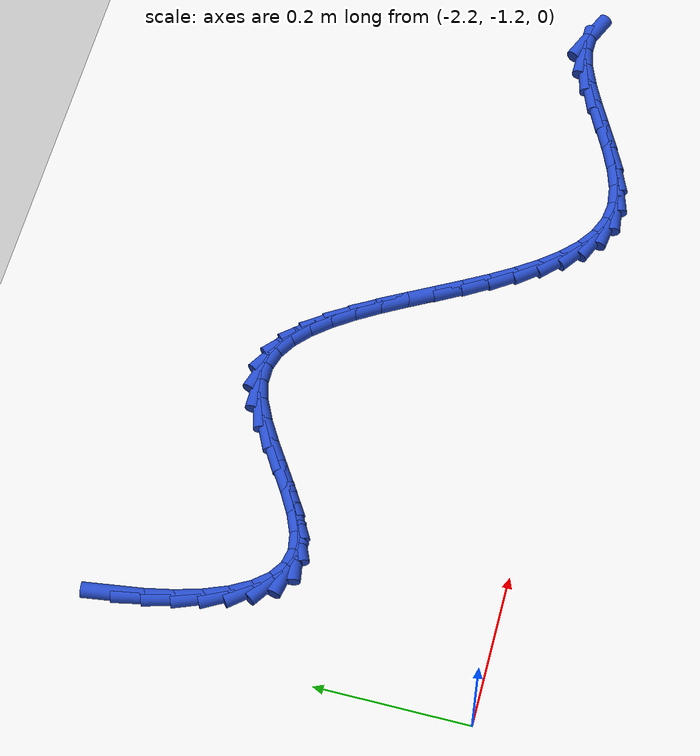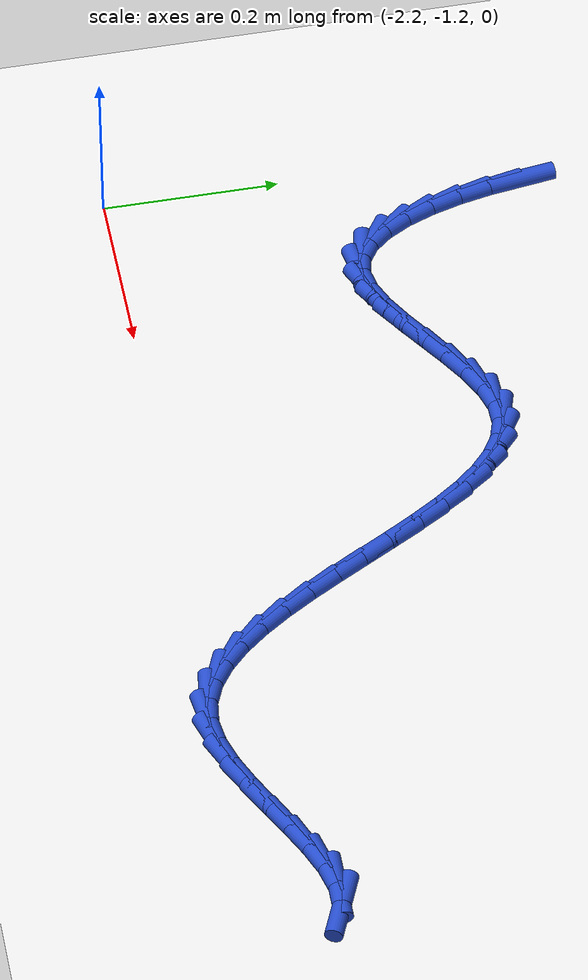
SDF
<sdf version="1.6">
 <world name="default">
  <model name="ground_plane">
   <static>1</static>
   <link name="link">
    <collision name="collision">
     <geometry><plane><normal>0 0 1</normal><size>100 100</size></plane></geometry>
     <surface><friction><ode><mu>100</mu><mu2>50</mu2></ode></friction></surface>
    </collision>
    <visual name="visual">
     <cast_shadows>0</cast_shadows>
     <geometry><plane><normal>0 0 1</normal><size>100 100</size></plane></geometry>
     <material>
      <script><uri>file://media/materials/scripts/gazebo.material</uri><name>Gazebo/WhiteGlow</name></script>
     </material>
    </visual>
   </link>
  </model>
  <model name="line">
   <link name="link_149">
    <pose>-2.1473235348914472 -0.730478417342017 0.01 0 1.57 -1.428241355379654</pose>
    <collision name="collision">
     <geometry><cylinder><radius>0.01</radius><length>0.08</length></cylinder></geometry>
    </collision>
    <visual name="visual">
     <material>
      <script><name>Gazebo/Blue</name><uri>file://media/materials/scripts/gazebo.material</uri></script>
     </material>
     <geometry><cylinder><radius>0.01</radius><length>0.08</length></cylinder></geometry>
    </visual>
   </link>
   <link name="link_150">
    <pose>-2.14197043281287 -0.7677748443466796 0.01 0 1.57 -1.3637867196344429</pose>
    <collision name="collision">
     <geometry><cylinder><radius>0.01</radius><length>0.08</length></cylinder></geometry>
    </collision>
    <visual name="visual">
     <material>
      <script><name>Gazebo/Blue</name><uri>file://media/materials/scripts/gazebo.material</uri></script>
     </material>
     <geometry><cylinder><radius>0.01</radius><length>0.08</length></cylinder></geometry>
    </visual>
   </link>
   <link name="link_151">
    <pose>-2.1342956981437093 -0.8043180361580814 0.01 0 1.57 -1.2878270527842612</pose>
    <collision name="collision">
     <geometry><cylinder><radius>0.01</radius><length>0.08</length></cylinder></geometry>
    </collision>
    <visual name="visual">
     <material>
      <script><name>Gazebo/Blue</name><uri>file://media/materials/scripts/gazebo.material</uri></script>
     </material>
     <geometry><cylinder><radius>0.01</radius><length>0.08</length></cylinder></geometry>
    </visual>
   </link>
   <link name="link_152">
    <pose>-2.124271263408682 -0.8387932914511042 0.01 0 1.57 -1.1912564215748491</pose>
    <collision name="collision">
     <geometry><cylinder><radius>0.01</radius><length>0.08</length></cylinder></geometry>
    </collision>
    <visual name="visual">
     <material>
      <script><name>Gazebo/Blue</name><uri>file://media/materials/scripts/gazebo.material</uri></script>
     </material>
     <geometry><cylinder><radius>0.01</radius><length>0.08</length></cylinder></geometry>
    </visual>
   </link>
   <link name="link_153">
    <pose>-2.1118690611325053 -0.8698859089006309 0.01 0 1.57 -1.0595388161125094</pose>
    <collision name="collision">
     <geometry><cylinder><radius>0.01</radius><length>0.08</length></cylinder></geometry>
    </collision>
    <visual name="visual">
     <material>
      <script><name>Gazebo/Blue</name><uri>file://media/materials/scripts/gazebo.material</uri></script>
     </material>
     <geometry><cylinder><radius>0.01</radius><length>0.08</length></cylinder></geometry>
    </visual>
   </link>
   <link name="link_154">
    <pose>-2.0970610238398946 -0.8962811871815436 0.01 0 1.57 -0.8686942385271983</pose>
    <collision name="collision">
     <geometry><cylinder><radius>0.01</radius><length>0.08</length></cylinder></geometry>
    </collision>
    <visual name="visual">
     <material>
      <script><name>Gazebo/Blue</name><uri>file://media/materials/scripts/gazebo.material</uri></script>
     </material>
     <geometry><cylinder><radius>0.01</radius><length>0.08</length></cylinder></geometry>
    </visual>
   </link>
   <link name="link_155">
    <pose>-2.0798190840555666 -0.9166644249687246 0.01 0 1.57 -0.5852061030363223</pose>
    <collision name="collision">
     <geometry><cylinder><radius>0.01</radius><length>0.08</length></cylinder></geometry>
    </collision>
    <visual name="visual">
     <material>
      <script><name>Gazebo/Blue</name><uri>file://media/materials/scripts/gazebo.material</uri></script>
     </material>
     <geometry><cylinder><radius>0.01</radius><length>0.08</length></cylinder></geometry>
    </visual>
   </link>
   <link name="link_156">
    <pose>-2.0601151743042365 -0.9297209209370564 0.01 0 1.57 -0.19696832118160715</pose>
    <collision name="collision">
     <geometry><cylinder><radius>0.01</radius><length>0.08</length></cylinder></geometry>
    </collision>
    <visual name="visual">
     <material>
      <script><name>Gazebo/Blue</name><uri>file://media/materials/scripts/gazebo.material</uri></script>
     </material>
     <geometry><cylinder><radius>0.01</radius><length>0.08</length></cylinder></geometry>
    </visual>
   </link>
   <link name="link_157">
    <pose>-2.037923364381969 -0.9341494233161004 0.01 0 1.57 0.17498329637496426</pose>
    <collision name="collision">
     <geometry><cylinder><radius>0.01</radius><length>0.08</length></cylinder></geometry>
    </collision>
    <visual name="visual">
     <material>
      <script><name>Gazebo/Blue</name><uri>file://media/materials/scripts/gazebo.material</uri></script>
     </material>
     <geometry><cylinder><radius>0.01</radius><length>0.08</length></cylinder></geometry>
    </visual>
   </link>
   <link name="link_158">
    <pose>-2.0134029734777923 -0.9298144292910283 0.01 0 1.57 0.4011921284588078</pose>
    <collision name="collision">
     <geometry><cylinder><radius>0.01</radius><length>0.08</length></cylinder></geometry>
    </collision>
    <visual name="visual">
     <material>
      <script><name>Gazebo/Blue</name><uri>file://media/materials/scripts/gazebo.material</uri></script>
     </material>
     <geometry><cylinder><radius>0.01</radius><length>0.08</length></cylinder></geometry>
    </visual>
   </link>
   <link name="link_159">
    <pose>-1.9870391641682301 -0.9186309236766069 0.01 0 1.57 0.521497393736799</pose>
    <collision name="collision">
     <geometry><cylinder><radius>0.01</radius><length>0.08</length></cylinder></geometry>
    </collision>
    <visual name="visual">
     <material>
      <script><name>Gazebo/Blue</name><uri>file://media/materials/scripts/gazebo.material</uri></script>
     </material>
     <geometry><cylinder><radius>0.01</radius><length>0.08</length></cylinder></geometry>
    </visual>
   </link>
   <link name="link_160">
    <pose>-1.9593501978736008 -0.9027221777600443 0.01 0 1.57 0.5760891140375564</pose>
    <collision name="collision">
     <geometry><cylinder><radius>0.01</radius><length>0.08</length></cylinder></geometry>
    </collision>
    <visual name="visual">
     <material>
      <script><name>Gazebo/Blue</name><uri>file://media/materials/scripts/gazebo.material</uri></script>
     </material>
     <geometry><cylinder><radius>0.01</radius><length>0.08</length></cylinder></geometry>
    </visual>
   </link>
   <link name="link_161">
    <pose>-1.93085433601422 -0.8842114628285477 0.01 0 1.57 0.5831707996606467</pose>
    <collision name="collision">
     <geometry><cylinder><radius>0.01</radius><length>0.08</length></cylinder></geometry>
    </collision>
    <visual name="visual">
     <material>
      <script><name>Gazebo/Blue</name><uri>file://media/materials/scripts/gazebo.material</uri></script>
     </material>
     <geometry><cylinder><radius>0.01</radius><length>0.08</length></cylinder></geometry>
    </visual>
   </link>
   <link name="link_162">
    <pose>-1.9020698400104066 -0.8652220501693247 0.01 0 1.57 0.545858569422847</pose>
    <collision name="collision">
     <geometry><cylinder><radius>0.01</radius><length>0.08</length></cylinder></geometry>
    </collision>
    <visual name="visual">
     <material>
      <script><name>Gazebo/Blue</name><uri>file://media/materials/scripts/gazebo.material</uri></script>
     </material>
     <geometry><cylinder><radius>0.01</radius><length>0.08</length></cylinder></geometry>
    </visual>
   </link>
   <link name="link_163">
    <pose>-1.8735149712824757 -0.8478772110695826 0.01 0 1.57 0.45421036179904695</pose>
    <collision name="collision">
     <geometry><cylinder><radius>0.01</radius><length>0.08</length></cylinder></geometry>
    </collision>
    <visual name="visual">
     <material>
      <script><name>Gazebo/Blue</name><uri>file://media/materials/scripts/gazebo.material</uri></script>
     </material>
     <geometry><cylinder><radius>0.01</radius><length>0.08</length></cylinder></geometry>
    </visual>
   </link>
   <link name="link_164">
    <pose>-1.8457079912507453 -0.834300216816529 0.01 0 1.57 0.281876377252097</pose>
    <collision name="collision">
     <geometry><cylinder><radius>0.01</radius><length>0.08</length></cylinder></geometry>
    </collision>
    <visual name="visual">
     <material>
      <script><name>Gazebo/Blue</name><uri>file://media/materials/scripts/gazebo.material</uri></script>
     </material>
     <geometry><cylinder><radius>0.01</radius><length>0.08</length></cylinder></geometry>
    </visual>
   </link>
   <link name="link_165">
    <pose>-1.8191671613355307 -0.8266143386973712 0.01 0 1.57 0.005169422000531282</pose>
    <collision name="collision">
     <geometry><cylinder><radius>0.01</radius><length>0.08</length></cylinder></geometry>
    </collision>
    <visual name="visual">
     <material>
      <script><name>Gazebo/Blue</name><uri>file://media/materials/scripts/gazebo.material</uri></script>
     </material>
     <geometry><cylinder><radius>0.01</radius><length>0.08</length></cylinder></geometry>
    </visual>
   </link>
   <link name="link_166">
    <pose>-1.794299379837322 -0.8264857854954821 0.01 0 1.57 -0.2960167781823894</pose>
    <collision name="collision">
     <geometry><cylinder><radius>0.01</radius><length>0.08</length></cylinder></geometry>
    </collision>
    <visual name="visual">
     <material>
      <script><name>Gazebo/Blue</name><uri>file://media/materials/scripts/gazebo.material</uri></script>
     </material>
     <geometry><cylinder><radius>0.01</radius><length>0.08</length></cylinder></geometry>
    </visual>
   </link>
   <link name="link_167">
    <pose>-1.7710250180691312 -0.833583935774134 0.01 0 1.57 -0.5508662085973592</pose>
    <collision name="collision">
     <geometry><cylinder><radius>0.01</radius><length>0.08</length></cylinder></geometry>
    </collision>
    <visual name="visual">
     <material>
      <script><name>Gazebo/Blue</name><uri>file://media/materials/scripts/gazebo.material</uri></script>
     </material>
     <geometry><cylinder><radius>0.01</radius><length>0.08</length></cylinder></geometry>
    </visual>
   </link>
   <link name="link_168">
    <pose>-1.7491316174655989 -0.8470330005681985 0.01 0 1.57 -0.7400128246517805</pose>
    <collision name="collision">
     <geometry><cylinder><radius>0.01</radius><length>0.08</length></cylinder></geometry>
    </collision>
    <visual name="visual">
     <material>
      <script><name>Gazebo/Blue</name><uri>file://media/materials/scripts/gazebo.material</uri></script>
     </material>
     <geometry><cylinder><radius>0.01</radius><length>0.08</length></cylinder></geometry>
    </visual>
   </link>
   <link name="link_169">
    <pose>-1.7284067163709464 -0.8659571782286776 0.01 0 1.57 -0.8719089233161468</pose>
    <collision name="collision">
     <geometry><cylinder><radius>0.01</radius><length>0.08</length></cylinder></geometry>
    </collision>
    <visual name="visual">
     <material>
      <script><name>Gazebo/Blue</name><uri>file://media/materials/scripts/gazebo.material</uri></script>
     </material>
     <geometry><cylinder><radius>0.01</radius><length>0.08</length></cylinder></geometry>
    </visual>
   </link>
   <link name="link_170">
    <pose>-1.7086378531293944 -0.8894806671065725 0.01 0 1.57 -0.9612440885038926</pose>
    <collision name="collision">
     <geometry><cylinder><radius>0.01</radius><length>0.08</length></cylinder></geometry>
    </collision>
    <visual name="visual">
     <material>
      <script><name>Gazebo/Blue</name><uri>file://media/materials/scripts/gazebo.material</uri></script>
     </material>
     <geometry><cylinder><radius>0.01</radius><length>0.08</length></cylinder></geometry>
    </visual>
   </link>
   <link name="link_171">
    <pose>-1.6896125660851644 -0.9167276655528851 0.01 0 1.57 -1.019759700894939</pose>
    <collision name="collision">
     <geometry><cylinder><radius>0.01</radius><length>0.08</length></cylinder></geometry>
    </collision>
    <visual name="visual">
     <material>
      <script><name>Gazebo/Blue</name><uri>file://media/materials/scripts/gazebo.material</uri></script>
     </material>
     <geometry><cylinder><radius>0.01</radius><length>0.08</length></cylinder></geometry>
    </visual>
   </link>
   <link name="link_172">
    <pose>-1.6711183935824767 -0.9468223719186176 0.01 0 1.57 -1.055142539197112</pose>
    <collision name="collision">
     <geometry><cylinder><radius>0.01</radius><length>0.08</length></cylinder></geometry>
    </collision>
    <visual name="visual">
     <material>
      <script><name>Gazebo/Blue</name><uri>file://media/materials/scripts/gazebo.material</uri></script>
     </material>
     <geometry><cylinder><radius>0.01</radius><length>0.08</length></cylinder></geometry>
    </visual>
   </link>
   <link name="link_173">
    <pose>-1.6529428739655527 -0.9788889845547694 0.01 0 1.57 -1.0719011871693895</pose>
    <collision name="collision">
     <geometry><cylinder><radius>0.01</radius><length>0.08</length></cylinder></geometry>
    </collision>
    <visual name="visual">
     <material>
      <script><name>Gazebo/Blue</name><uri>file://media/materials/scripts/gazebo.material</uri></script>
     </material>
     <geometry><cylinder><radius>0.01</radius><length>0.08</length></cylinder></geometry>
    </visual>
   </link>
   <link name="link_174">
    <pose>-1.6348735455786136 -1.0120517018123434 0.01 0 1.57 -1.0722192039104275</pose>
    <collision name="collision">
     <geometry><cylinder><radius>0.01</radius><length>0.08</length></cylinder></geometry>
    </collision>
    <visual name="visual">
     <material>
      <script><name>Gazebo/Blue</name><uri>file://media/materials/scripts/gazebo.material</uri></script>
     </material>
     <geometry><cylinder><radius>0.01</radius><length>0.08</length></cylinder></geometry>
    </visual>
   </link>
   <link name="link_175">
    <pose>-1.61669794676588 -1.0454347220423408 0.01 0 1.57 -1.0564337906575918</pose>
    <collision name="collision">
     <geometry><cylinder><radius>0.01</radius><length>0.08</length></cylinder></geometry>
    </collision>
    <visual name="visual">
     <material>
      <script><name>Gazebo/Blue</name><uri>file://media/materials/scripts/gazebo.material</uri></script>
     </material>
     <geometry><cylinder><radius>0.01</radius><length>0.08</length></cylinder></geometry>
    </visual>
   </link>
   <link name="link_176">
    <pose>-1.598203615871573 -1.0781622435957634 0.01 0 1.57 -1.02315374632168</pose>
    <collision name="collision">
     <geometry><cylinder><radius>0.01</radius><length>0.08</length></cylinder></geometry>
    </collision>
    <visual name="visual">
     <material>
      <script><name>Gazebo/Blue</name><uri>file://media/materials/scripts/gazebo.material</uri></script>
     </material>
     <geometry><cylinder><radius>0.01</radius><length>0.08</length></cylinder></geometry>
    </visual>
   </link>
   <link name="link_177">
    <pose>-1.579178091239913 -1.1093584648236121 0.01 0 1.57 -0.9690596937883879</pose>
    <collision name="collision">
     <geometry><cylinder><radius>0.01</radius><length>0.08</length></cylinder></geometry>
    </collision>
    <visual name="visual">
     <material>
      <script><name>Gazebo/Blue</name><uri>file://media/materials/scripts/gazebo.material</uri></script>
     </material>
     <geometry><cylinder><radius>0.01</radius><length>0.08</length></cylinder></geometry>
    </visual>
   </link>
   <link name="link_178">
    <pose>-1.5594089112151215 -1.1381475840768893 0.01 0 1.57 -0.8884444228541137</pose>
    <collision name="collision">
     <geometry><cylinder><radius>0.01</radius><length>0.08</length></cylinder></geometry>
    </collision>
    <visual name="visual">
     <material>
      <script><name>Gazebo/Blue</name><uri>file://media/materials/scripts/gazebo.material</uri></script>
     </material>
     <geometry><cylinder><radius>0.01</radius><length>0.08</length></cylinder></geometry>
    </visual>
   </link>
   <link name="link_179">
    <pose>-1.5386836141414193 -1.1636537997065957 0.01 0 1.57 -0.7727635927411011</pose>
    <collision name="collision">
     <geometry><cylinder><radius>0.01</radius><length>0.08</length></cylinder></geometry>
    </collision>
    <visual name="visual">
     <material>
      <script><name>Gazebo/Blue</name><uri>file://media/materials/scripts/gazebo.material</uri></script>
     </material>
     <geometry><cylinder><radius>0.01</radius><length>0.08</length></cylinder></geometry>
    </visual>
   </link>
   <link name="link_180">
    <pose>-1.516789738363028 -1.185001310063733 0.01 0 1.57 -0.6113186353112479</pose>
    <collision name="collision">
     <geometry><cylinder><radius>0.01</radius><length>0.08</length></cylinder></geometry>
    </collision>
    <visual name="visual">
     <material>
      <script><name>Gazebo/Blue</name><uri>file://media/materials/scripts/gazebo.material</uri></script>
     </material>
     <geometry><cylinder><radius>0.01</radius><length>0.08</length></cylinder></geometry>
    </visual>
   </link>
   <link name="link_181">
    <pose>-1.4935148222241663 -1.2013143134993034 0.01 0 1.57 -0.39619008953753193</pose>
    <collision name="collision">
     <geometry><cylinder><radius>0.01</radius><length>0.08</length></cylinder></geometry>
    </collision>
    <visual name="visual">
     <material>
      <script><name>Gazebo/Blue</name><uri>file://media/materials/scripts/gazebo.material</uri></script>
     </material>
     <geometry><cylinder><radius>0.01</radius><length>0.08</length></cylinder></geometry>
    </visual>
   </link>
   <link name="link_182">
    <pose>-1.468646404069058 -1.2117170083643074 0.01 0 1.57 -0.13476095171611122</pose>
    <collision name="collision">
     <geometry><cylinder><radius>0.01</radius><length>0.08</length></cylinder></geometry>
    </collision>
    <visual name="visual">
     <material>
      <script><name>Gazebo/Blue</name><uri>file://media/materials/scripts/gazebo.material</uri></script>
     </material>
     <geometry><cylinder><radius>0.01</radius><length>0.08</length></cylinder></geometry>
    </visual>
   </link>
   <link name="link_183">
    <pose>-1.4419720222419228 -1.2153335930097469 0.01 0 1.57 0.12633614716655178</pose>
    <collision name="collision">
     <geometry><cylinder><radius>0.01</radius><length>0.08</length></cylinder></geometry>
    </collision>
    <visual name="visual">
     <material>
      <script><name>Gazebo/Blue</name><uri>file://media/materials/scripts/gazebo.material</uri></script>
     </material>
     <geometry><cylinder><radius>0.01</radius><length>0.08</length></cylinder></geometry>
    </visual>
   </link>
   <link name="link_184">
    <pose>-1.413399550765148 -1.2117045288569503 0.01 0 1.57 0.307234814062138</pose>
    <collision name="collision">
     <geometry><cylinder><radius>0.01</radius><length>0.08</length></cylinder></geometry>
    </collision>
    <visual name="visual">
     <material>
      <script><name>Gazebo/Blue</name><uri>file://media/materials/scripts/gazebo.material</uri></script>
     </material>
     <geometry><cylinder><radius>0.01</radius><length>0.08</length></cylinder></geometry>
    </visual>
   </link>
   <link name="link_185">
    <pose>-1.3833579759104646 -1.2021728996933017 0.01 0 1.57 0.41421915112330177</pose>
    <collision name="collision">
     <geometry><cylinder><radius>0.01</radius><length>0.08</length></cylinder></geometry>
    </collision>
    <visual name="visual">
     <material>
      <script><name>Gazebo/Blue</name><uri>file://media/materials/scripts/gazebo.material</uri></script>
     </material>
     <geometry><cylinder><radius>0.01</radius><length>0.08</length></cylinder></geometry>
    </visual>
   </link>
   <link name="link_186">
    <pose>-1.3524173123347076 -1.1885696322259358 0.01 0 1.57 0.46898294806084434</pose>
    <collision name="collision">
     <geometry><cylinder><radius>0.01</radius><length>0.08</length></cylinder></geometry>
    </collision>
    <visual name="visual">
     <material>
      <script><name>Gazebo/Blue</name><uri>file://media/materials/scripts/gazebo.material</uri></script>
     </material>
     <geometry><cylinder><radius>0.01</radius><length>0.08</length></cylinder></geometry>
    </visual>
   </link>
   <link name="link_187">
    <pose>-1.3211475771082803 -1.1727256615109583 0.01 0 1.57 0.48252754023388944</pose>
    <collision name="collision">
     <geometry><cylinder><radius>0.01</radius><length>0.08</length></cylinder></geometry>
    </collision>
    <visual name="visual">
     <material>
      <script><name>Gazebo/Blue</name><uri>file://media/materials/scripts/gazebo.material</uri></script>
     </material>
     <geometry><cylinder><radius>0.01</radius><length>0.08</length></cylinder></geometry>
    </visual>
   </link>
   <link name="link_188">
    <pose>-1.2901187873015845 -1.1564719226044746 0.01 0 1.57 0.4563048918352465</pose>
    <collision name="collision">
     <geometry><cylinder><radius>0.01</radius><length>0.08</length></cylinder></geometry>
    </collision>
    <visual name="visual">
     <material>
      <script><name>Gazebo/Blue</name><uri>file://media/materials/scripts/gazebo.material</uri></script>
     </material>
     <geometry><cylinder><radius>0.01</radius><length>0.08</length></cylinder></geometry>
    </visual>
   </link>
   <link name="link_189">
    <pose>-1.2599009599850255 -1.141639350562592 0.01 0 1.57 0.38187274423978346</pose>
    <collision name="collision">
     <geometry><cylinder><radius>0.01</radius><length>0.08</length></cylinder></geometry>
    </collision>
    <visual name="visual">
     <material>
      <script><name>Gazebo/Blue</name><uri>file://media/materials/scripts/gazebo.material</uri></script>
     </material>
     <geometry><cylinder><radius>0.01</radius><length>0.08</length></cylinder></geometry>
    </visual>
   </link>
   <link name="link_190">
    <pose>-1.2310641122290054 -1.130058880441415 0.01 0 1.57 0.2371209507244933</pose>
    <collision name="collision">
     <geometry><cylinder><radius>0.01</radius><length>0.08</length></cylinder></geometry>
    </collision>
    <visual name="visual">
     <material>
      <script><name>Gazebo/Blue</name><uri>file://media/materials/scripts/gazebo.material</uri></script>
     </material>
     <geometry><cylinder><radius>0.01</radius><length>0.08</length></cylinder></geometry>
    </visual>
   </link>
   <link name="link_191">
    <pose>-1.2041782611039273 -1.1235614472970508 0.01 0 1.57 -0.01709423739765454</pose>
    <collision name="collision">
     <geometry><cylinder><radius>0.01</radius><length>0.08</length></cylinder></geometry>
    </collision>
    <visual name="visual">
     <material>
      <script><name>Gazebo/Blue</name><uri>file://media/materials/scripts/gazebo.material</uri></script>
     </material>
     <geometry><cylinder><radius>0.01</radius><length>0.08</length></cylinder></geometry>
    </visual>
   </link>
   <link name="link_192">
    <pose>-1.1798134236801936 -1.1239779861856039 0.01 0 1.57 -0.40420885681289537</pose>
    <collision name="collision">
     <geometry><cylinder><radius>0.01</radius><length>0.08</length></cylinder></geometry>
    </collision>
    <visual name="visual">
     <material>
      <script><name>Gazebo/Blue</name><uri>file://media/materials/scripts/gazebo.material</uri></script>
     </material>
     <geometry><cylinder><radius>0.01</radius><length>0.08</length></cylinder></geometry>
    </visual>
   </link>
  </model>
 </world>
</sdf>
